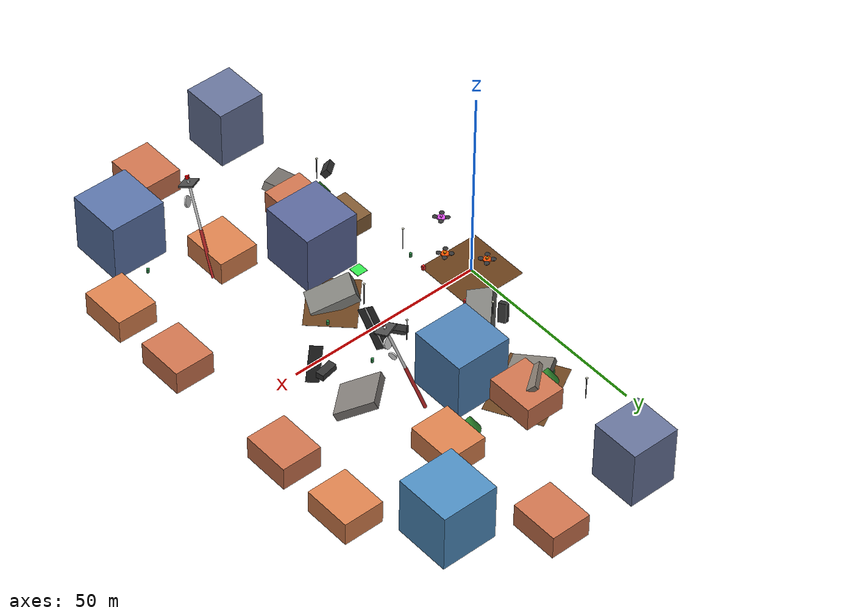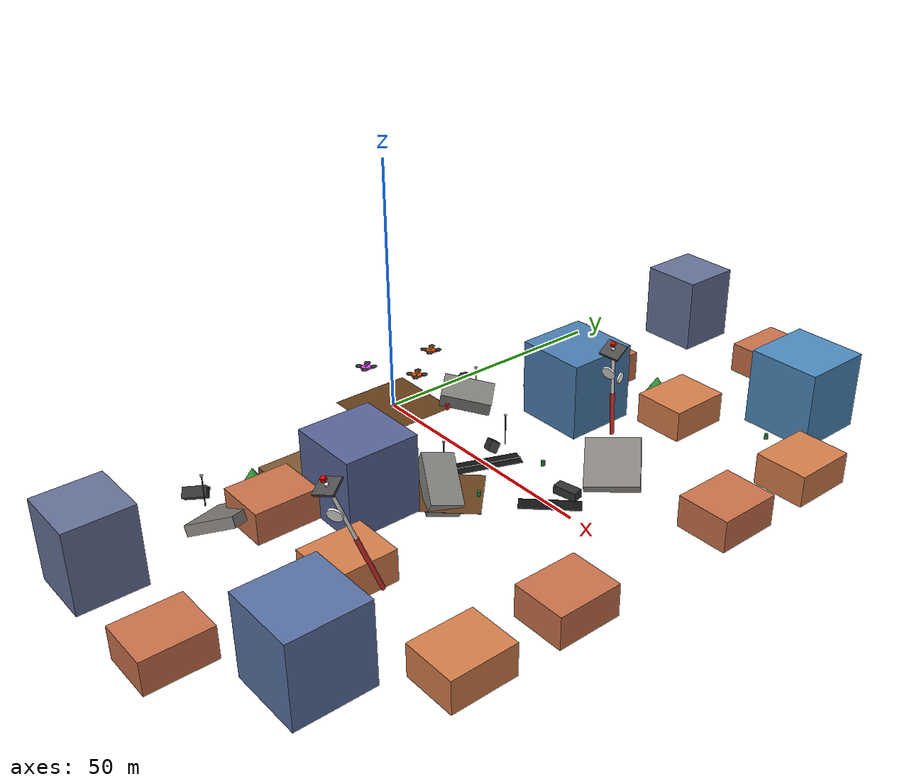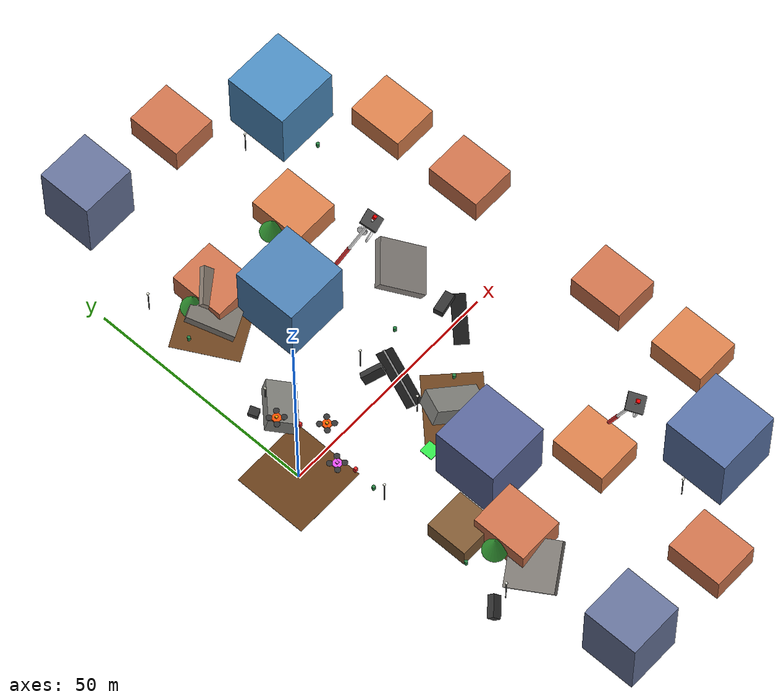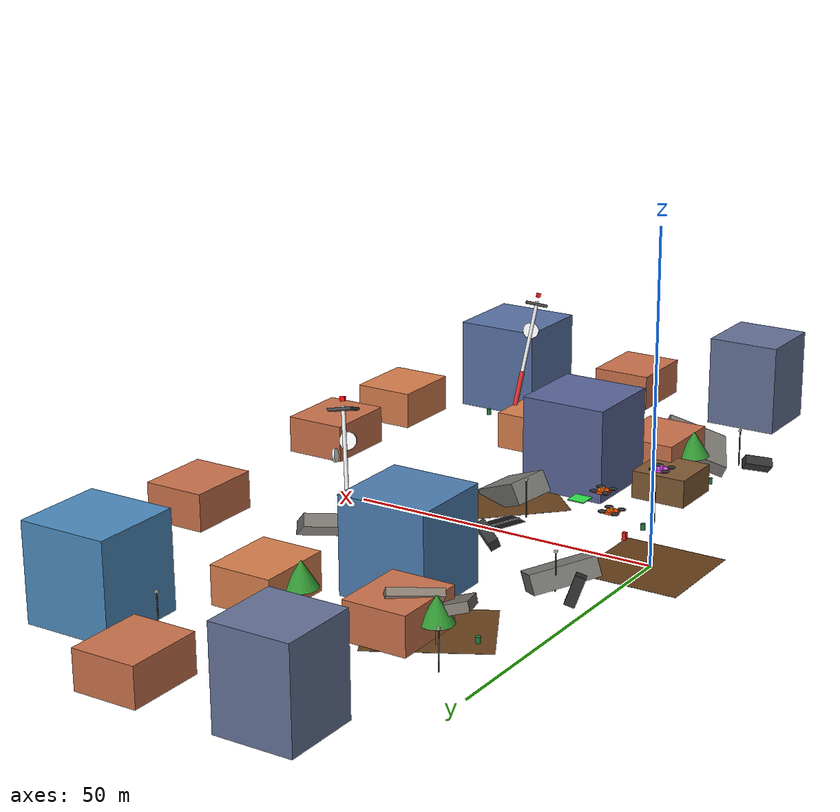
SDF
<sdf version="1.8">
 <world name="city_earthquake_fire_world">
  <model name="road_crack_east_1">
   <static>true</static>
   <pose>28 0 0.04 0 0 1.2</pose>
   <link name="link">
    <visual name="crack">
     <geometry><box><size>13 3.5 0.05</size></box></geometry>
     <material><ambient>0.05 0.05 0.05 1</ambient><diffuse>0.08 0.08 0.08 1</diffuse></material>
    </visual>
    <visual name="rubble_edge">
     <pose>0 0 0.04 0 0 0</pose>
     <geometry><box><size>13.2 0.4 0.08</size></box></geometry>
     <material><ambient>0.4 0.4 0.4 1</ambient><diffuse>0.5 0.5 0.5 1</diffuse></material>
    </visual>
   </link>
  </model>
  <model name="road_crack_east_2">
   <static>true</static>
   <pose>45 0 0.04 0 0 0.8</pose>
   <link name="link">
    <visual name="crack">
     <geometry><box><size>11 3.0 0.05</size></box></geometry>
     <material><ambient>0.05 0.05 0.05 1</ambient><diffuse>0.08 0.08 0.08 1</diffuse></material>
    </visual>
   </link>
  </model>
  <model name="mud_patch_1">
   <static>true</static>
   <pose>0 0 0.02 0 0 0</pose>
   <link name="link">
    <visual name="mud">
     <geometry><box><size>16 16 0.03</size></box></geometry>
     <material><ambient>0.3 0.18 0.08 1</ambient><diffuse>0.4 0.24 0.1 1</diffuse></material>
    </visual>
   </link>
  </model>
  <model name="mud_patch_2">
   <static>true</static>
   <pose>15 35 0.02 0 0 0.5</pose>
   <link name="link">
    <visual name="mud">
     <geometry><box><size>18 14 0.03</size></box></geometry>
     <material><ambient>0.32 0.2 0.09 1</ambient><diffuse>0.42 0.26 0.12 1</diffuse></material>
    </visual>
   </link>
  </model>
  <model name="mud_patch_4">
   <static>true</static>
   <pose>30 -12 0.02 0 0 0.8</pose>
   <link name="link">
    <visual name="mud">
     <geometry><box><size>15 12 0.03</size></box></geometry>
     <material><ambient>0.32 0.2 0.09 1</ambient><diffuse>0.42 0.26 0.12 1</diffuse></material>
    </visual>
   </link>
  </model>
  <model name="ugv_charging_pad_alpha">
   <static>true</static>
   <pose>20 -15 1.45 0 0 0</pose>
   <link name="link">
    <visual name="charging_pad">
     <geometry><box><size>2.8 2.8 0.15</size></box></geometry>
     <material>
      <ambient>0.1 0.8 0.2 1</ambient>
      <diffuse>0.2 0.9 0.3 1</diffuse>
      <emissive>0.1 0.9 0.2 1</emissive>
     </material>
    </visual>
   </link>
  </model>
  <model name="collapsed_building_1">
   <static>true</static>
   <pose>15 35 2 0.3 0.2 0.5</pose>
   <link name="link">
    <visual name="slab1">
     <pose>0 0 1 0 0 0</pose>
     <geometry><box><size>12 10 1.5</size></box></geometry>
     <material><ambient>0.4 0.38 0.35 1</ambient><diffuse>0.5 0.48 0.45 1</diffuse></material>
    </visual>
    <visual name="slab2">
     <pose>2 1 2.5 0.4 -0.2 0.3</pose>
     <geometry><box><size>8 8 1.2</size></box></geometry>
     <material><ambient>0.45 0.4 0.35 1</ambient><diffuse>0.55 0.5 0.45 1</diffuse></material>
    </visual>
   </link>
  </model>
  <model name="collapsed_building_3">
   <static>true</static>
   <pose>45 15 2 0.1 0.5 -0.8</pose>
   <link name="link">
    <visual name="slab">
     <geometry><box><size>10 10 2</size></box></geometry>
     <material><ambient>0.42 0.4 0.38 1</ambient><diffuse>0.52 0.5 0.48 1</diffuse></material>
    </visual>
   </link>
  </model>
  <model name="collapsed_building_5">
   <static>true</static>
   <pose>15 -45 2 0.4 -0.2 -1.1</pose>
   <link name="link">
    <visual name="slab">
     <geometry><box><size>10 10 2</size></box></geometry>
     <material><ambient>0.42 0.4 0.38 1</ambient><diffuse>0.52 0.5 0.48 1</diffuse></material>
    </visual>
   </link>
  </model>
  <model name="suv_wreck_1">
   <static>true</static>
   <pose>4 15 1.0 0.4 1.2 0.8</pose>
   <link name="link">
    <visual name="chassis">
     <geometry><box><size>4.5 2.0 1.6</size></box></geometry>
     <material><ambient>0.15 0.15 0.15 1</ambient><diffuse>0.2 0.2 0.2 1</diffuse></material>
    </visual>
   </link>
  </model>
  <model name="suv_wreck_3">
   <static>true</static>
   <pose>25 4 0.9 1.1 -0.4 -0.5</pose>
   <link name="link">
    <visual name="chassis">
     <geometry><box><size>4.5 2.0 1.6</size></box></geometry>
     <material><ambient>0.15 0.15 0.15 1</ambient><diffuse>0.2 0.2 0.2 1</diffuse></material>
    </visual>
   </link>
  </model>
  <model name="suv_wreck_5">
   <static>true</static>
   <pose>45 4 1.1 3.14 0 0.2</pose>
   <link name="link">
    <visual name="chassis">
     <geometry><box><size>4.5 2.0 1.6</size></box></geometry>
     <material><ambient>0.15 0.15 0.15 1</ambient><diffuse>0.2 0.2 0.2 1</diffuse></material>
    </visual>
   </link>
  </model>
  <model name="suv_wreck_7">
   <static>true</static>
   <pose>4 -45 1.0 0.8 -0.2 0.7</pose>
   <link name="link">
    <visual name="chassis">
     <geometry><box><size>4.5 2.0 1.6</size></box></geometry>
     <material><ambient>0.15 0.15 0.15 1</ambient><diffuse>0.2 0.2 0.2 1</diffuse></material>
    </visual>
   </link>
  </model>
  <model name="rubble_mound_1">
   <static>true</static>
   <pose>8 12 1.5 0.3 0.2 0.8</pose>
   <link name="link">
    <visual name="visual">
     <geometry><box><size>10 6 3</size></box></geometry>
     <material><ambient>0.4 0.4 0.38 1</ambient><diffuse>0.5 0.5 0.48 1</diffuse></material>
    </visual>
   </link>
  </model>
  <model name="rubble_mound_3">
   <static>true</static>
   <pose>30 -12 1.8 -0.2 0.4 -0.5</pose>
   <link name="link">
    <visual name="visual">
     <geometry><box><size>11 6 3.5</size></box></geometry>
     <material><ambient>0.4 0.4 0.38 1</ambient><diffuse>0.5 0.5 0.48 1</diffuse></material>
    </visual>
   </link>
  </model>
  <model name="dirt_mound_1">
   <static>true</static>
   <pose>12 -30 1.2 0 0 0</pose>
   <link name="link">
    <visual name="visual">
     <geometry><box><size>9 9 4.5</size></box></geometry>
     <material><ambient>0.4 0.28 0.15 1</ambient><diffuse>0.5 0.35 0.2 1</diffuse></material>
    </visual>
   </link>
  </model>
  <model name="broken_cell_tower_1">
   <static>true</static>
   <pose>35 25 0.0 0.35 0.15 0.3</pose>
   <link name="link">
    <visual name="mast_lower">
     <pose>0 0 6 0 0 0</pose>
     <geometry><cylinder><radius>0.4</radius><length>12</length></cylinder></geometry>
     <material><ambient>0.8 0.15 0.15 1</ambient><diffuse>0.9 0.2 0.2 1</diffuse></material>
    </visual>
    <visual name="mast_upper">
     <pose>0 0 18 0 0 0</pose>
     <geometry><cylinder><radius>0.3</radius><length>12</length></cylinder></geometry>
     <material><ambient>0.85 0.85 0.85 1</ambient><diffuse>0.95 0.95 0.95 1</diffuse></material>
    </visual>
    <visual name="antenna_boom">
     <pose>0 0 23.5 0 0 0</pose>
     <geometry><box><size>3.6 3.6 0.4</size></box></geometry>
     <material><ambient>0.2 0.2 0.2 1</ambient><diffuse>0.3 0.3 0.3 1</diffuse></material>
    </visual>
    <visual name="microwave_dish_1">
     <pose>0 -1.5 19 1.57 0 0</pose>
     <geometry><cylinder><radius>1.3</radius><length>0.35</length></cylinder></geometry>
     <material><ambient>0.9 0.9 0.9 1</ambient><diffuse>1.0 1.0 1.0 1</diffuse></material>
    </visual>
    <visual name="microwave_dish_2">
     <pose>1.5 0 17 0 1.57 0</pose>
     <geometry><cylinder><radius>1.0</radius><length>0.3</length></cylinder></geometry>
     <material><ambient>0.9 0.9 0.9 1</ambient><diffuse>1.0 1.0 1.0 1</diffuse></material>
    </visual>
    <visual name="hazard_beacon">
     <pose>0 0 25.0 0 0 0</pose>
     <geometry><box><size>0.7 0.7 0.7</size></box></geometry>
     <material>
      <ambient>1.0 0.0 0.0 1</ambient>
      <diffuse>1.0 0.0 0.0 1</diffuse>
      <emissive>1.0 0.0 0.0 1</emissive>
     </material>
    </visual>
   </link>
  </model>
  <model name="broken_cell_tower_3">
   <static>true</static>
   <pose>45 -35 0.0 0.3 -0.2 0.5</pose>
   <link name="link">
    <visual name="mast_lower">
     <pose>0 0 6 0 0 0</pose>
     <geometry><cylinder><radius>0.4</radius><length>12</length></cylinder></geometry>
     <material><ambient>0.8 0.15 0.15 1</ambient><diffuse>0.9 0.2 0.2 1</diffuse></material>
    </visual>
    <visual name="mast_upper">
     <pose>0 0 18 0 0 0</pose>
     <geometry><cylinder><radius>0.3</radius><length>12</length></cylinder></geometry>
     <material><ambient>0.85 0.85 0.85 1</ambient><diffuse>0.95 0.95 0.95 1</diffuse></material>
    </visual>
    <visual name="antenna_boom">
     <pose>0 0 23.5 0 0 0</pose>
     <geometry><box><size>3.6 3.6 0.4</size></box></geometry>
     <material><ambient>0.2 0.2 0.2 1</ambient><diffuse>0.3 0.3 0.3 1</diffuse></material>
    </visual>
    <visual name="microwave_dish_1">
     <pose>0 -1.5 19 1.57 0 0</pose>
     <geometry><cylinder><radius>1.3</radius><length>0.35</length></cylinder></geometry>
     <material><ambient>0.9 0.9 0.9 1</ambient><diffuse>1.0 1.0 1.0 1</diffuse></material>
    </visual>
    <visual name="hazard_beacon">
     <pose>0 0 25.0 0 0 0</pose>
     <geometry><box><size>0.7 0.7 0.7</size></box></geometry>
     <material>
      <ambient>1.0 0.0 0.0 1</ambient>
      <diffuse>1.0 0.0 0.0 1</diffuse>
      <emissive>1.0 0.0 0.0 1</emissive>
     </material>
    </visual>
   </link>
  </model>
  <model name="tree_1">
   <static>true</static>
   <pose>12 38 0 0 0 0</pose>
   <link name="link">
    <visual name="trunk">
     <pose>0 0 2 0 0 0</pose>
     <geometry><cylinder><radius>0.25</radius><length>4</length></cylinder></geometry>
     <material><ambient>0.4 0.25 0.1 1</ambient><diffuse>0.5 0.3 0.15 1</diffuse></material>
    </visual>
    <visual name="canopy">
     <pose>0 0 5 0 0 0</pose>
     <geometry><cone><radius>2.5</radius><length>4</length></cone></geometry>
     <material><ambient>0.15 0.5 0.15 1</ambient><diffuse>0.2 0.6 0.2 1</diffuse></material>
    </visual>
   </link>
  </model>
  <model name="tree_2">
   <static>true</static>
   <pose>34 38 0 0 0 0</pose>
   <link name="link">
    <visual name="trunk">
     <pose>0 0 2 0 0 0</pose>
     <geometry><cylinder><radius>0.25</radius><length>4</length></cylinder></geometry>
     <material><ambient>0.4 0.25 0.1 1</ambient><diffuse>0.5 0.3 0.15 1</diffuse></material>
    </visual>
    <visual name="canopy">
     <pose>0 0 5 0 0 0</pose>
     <geometry><cone><radius>2.5</radius><length>4</length></cone></geometry>
     <material><ambient>0.15 0.5 0.15 1</ambient><diffuse>0.2 0.6 0.2 1</diffuse></material>
    </visual>
   </link>
  </model>
  <model name="tree_5">
   <static>true</static>
   <pose>12 -38 0 0 0 0</pose>
   <link name="link">
    <visual name="trunk">
     <pose>0 0 2 0 0 0</pose>
     <geometry><cylinder><radius>0.25</radius><length>4</length></cylinder></geometry>
     <material><ambient>0.4 0.25 0.1 1</ambient><diffuse>0.5 0.3 0.15 1</diffuse></material>
    </visual>
    <visual name="canopy">
     <pose>0 0 5 0 0 0</pose>
     <geometry><cone><radius>2.5</radius><length>4</length></cone></geometry>
     <material><ambient>0.15 0.5 0.15 1</ambient><diffuse>0.2 0.6 0.2 1</diffuse></material>
    </visual>
   </link>
  </model>
  <model name="bench_1">
   <static>true</static>
   <pose>18 42 0.4 0 0 0</pose>
   <link name="link">
    <visual name="seat">
     <geometry><box><size>2.0 0.6 0.1</size></box></geometry>
     <material><ambient>0.5 0.25 0.1 1</ambient><diffuse>0.6 0.3 0.15 1</diffuse></material>
    </visual>
   </link>
  </model>
  <model name="hydrant_1">
   <static>true</static>
   <pose>7.8 15 0.4 0 0 0</pose>
   <link name="link">
    <visual name="body">
     <geometry><cylinder><radius>0.2</radius><length>0.8</length></cylinder></geometry>
     <material><ambient>0.9 0.1 0.1 1</ambient><diffuse>1.0 0.15 0.15 1</diffuse></material>
    </visual>
   </link>
  </model>
  <model name="post_box_1">
   <static>true</static>
   <pose>8 7 0.6 0 0 0</pose>
   <link name="link">
    <visual name="box">
     <geometry><box><size>0.6 0.6 1.2</size></box></geometry>
     <material><ambient>0.8 0.1 0.1 1</ambient><diffuse>0.9 0.15 0.15 1</diffuse></material>
    </visual>
   </link>
  </model>
  <model name="post_box_3">
   <static>true</static>
   <pose>8 -7 0.6 0 0 0</pose>
   <link name="link">
    <visual name="box">
     <geometry><box><size>0.6 0.6 1.2</size></box></geometry>
     <material><ambient>0.8 0.1 0.1 1</ambient><diffuse>0.9 0.15 0.15 1</diffuse></material>
    </visual>
   </link>
  </model>
  <model name="street_lamp_1">
   <static>true</static>
   <pose>7.2 15 3.0 0 0 0</pose>
   <link name="link">
    <visual name="pole">
     <geometry><cylinder><radius>0.1</radius><length>6.0</length></cylinder></geometry>
     <material><ambient>0.3 0.3 0.3 1</ambient><diffuse>0.4 0.4 0.4 1</diffuse></material>
    </visual>
    <visual name="lamp">
     <pose>0 0 3.1 0 0 0</pose>
     <geometry><box><size>0.4 0.4 0.3</size></box></geometry>
     <material>
      <ambient>1.0 1.0 0.8 1</ambient>
      <diffuse>1.0 1.0 0.9 1</diffuse>
      <emissive>1.0 1.0 0.8 1</emissive>
     </material>
    </visual>
   </link>
  </model>
  <model name="street_lamp_3">
   <static>true</static>
   <pose>7.2 -15 3.0 0 0 0</pose>
   <link name="link">
    <visual name="pole">
     <geometry><cylinder><radius>0.1</radius><length>6.0</length></cylinder></geometry>
     <material><ambient>0.3 0.3 0.3 1</ambient><diffuse>0.4 0.4 0.4 1</diffuse></material>
    </visual>
    <visual name="lamp">
     <pose>0 0 3.1 0 0 0</pose>
     <geometry><box><size>0.4 0.4 0.3</size></box></geometry>
     <material>
      <ambient>1.0 1.0 0.8 1</ambient>
      <diffuse>1.0 1.0 0.9 1</diffuse>
      <emissive>1.0 1.0 0.8 1</emissive>
     </material>
    </visual>
   </link>
  </model>
  <model name="street_lamp_5">
   <static>true</static>
   <pose>7.2 45 3.0 0 0 0</pose>
   <link name="link">
    <visual name="pole">
     <geometry><cylinder><radius>0.1</radius><length>6.0</length></cylinder></geometry>
     <material><ambient>0.3 0.3 0.3 1</ambient><diffuse>0.4 0.4 0.4 1</diffuse></material>
    </visual>
    <visual name="lamp">
     <pose>0 0 3.1 0 0 0</pose>
     <geometry><box><size>0.4 0.4 0.3</size></box></geometry>
     <material>
      <ambient>1.0 1.0 0.8 1</ambient>
      <diffuse>1.0 1.0 0.9 1</diffuse>
      <emissive>1.0 1.0 0.8 1</emissive>
     </material>
    </visual>
   </link>
  </model>
  <model name="street_lamp_7">
   <static>true</static>
   <pose>7.2 -45 3.0 0 0 0</pose>
   <link name="link">
    <visual name="pole">
     <geometry><cylinder><radius>0.1</radius><length>6.0</length></cylinder></geometry>
     <material><ambient>0.3 0.3 0.3 1</ambient><diffuse>0.4 0.4 0.4 1</diffuse></material>
    </visual>
    <visual name="lamp">
     <pose>0 0 3.1 0 0 0</pose>
     <geometry><box><size>0.4 0.4 0.3</size></box></geometry>
     <material>
      <ambient>1.0 1.0 0.8 1</ambient>
      <diffuse>1.0 1.0 0.9 1</diffuse>
      <emissive>1.0 1.0 0.8 1</emissive>
     </material>
    </visual>
   </link>
  </model>
  <model name="street_lamp_9">
   <static>true</static>
   <pose>25 7.2 3.0 0 0 0</pose>
   <link name="link">
    <visual name="pole">
     <geometry><cylinder><radius>0.1</radius><length>6.0</length></cylinder></geometry>
     <material><ambient>0.3 0.3 0.3 1</ambient><diffuse>0.4 0.4 0.4 1</diffuse></material>
    </visual>
    <visual name="lamp">
     <pose>0 0 3.1 0 0 0</pose>
     <geometry><box><size>0.4 0.4 0.3</size></box></geometry>
     <material>
      <ambient>1.0 1.0 0.8 1</ambient>
      <diffuse>1.0 1.0 0.9 1</diffuse>
      <emissive>1.0 1.0 0.8 1</emissive>
     </material>
    </visual>
   </link>
  </model>
  <model name="street_lamp_11">
   <static>true</static>
   <pose>25 -7.2 3.0 0 0 0</pose>
   <link name="link">
    <visual name="pole">
     <geometry><cylinder><radius>0.1</radius><length>6.0</length></cylinder></geometry>
     <material><ambient>0.3 0.3 0.3 1</ambient><diffuse>0.4 0.4 0.4 1</diffuse></material>
    </visual>
    <visual name="lamp">
     <pose>0 0 3.1 0 0 0</pose>
     <geometry><box><size>0.4 0.4 0.3</size></box></geometry>
     <material>
      <ambient>1.0 1.0 0.8 1</ambient>
      <diffuse>1.0 1.0 0.9 1</diffuse>
      <emissive>1.0 1.0 0.8 1</emissive>
     </material>
    </visual>
   </link>
  </model>
  <model name="street_lamp_13">
   <static>true</static>
   <pose>45 55.2 3.0 0 0 0</pose>
   <link name="link">
    <visual name="pole">
     <geometry><cylinder><radius>0.1</radius><length>6.0</length></cylinder></geometry>
     <material><ambient>0.3 0.3 0.3 1</ambient><diffuse>0.4 0.4 0.4 1</diffuse></material>
    </visual>
    <visual name="lamp">
     <pose>0 0 3.1 0 0 0</pose>
     <geometry><box><size>0.4 0.4 0.3</size></box></geometry>
     <material>
      <ambient>1.0 1.0 0.8 1</ambient>
      <diffuse>1.0 1.0 0.9 1</diffuse>
      <emissive>1.0 1.0 0.8 1</emissive>
     </material>
    </visual>
   </link>
  </model>
  <model name="street_lamp_15">
   <static>true</static>
   <pose>45 -55.2 3.0 0 0 0</pose>
   <link name="link">
    <visual name="pole">
     <geometry><cylinder><radius>0.1</radius><length>6.0</length></cylinder></geometry>
     <material><ambient>0.3 0.3 0.3 1</ambient><diffuse>0.4 0.4 0.4 1</diffuse></material>
    </visual>
    <visual name="lamp">
     <pose>0 0 3.1 0 0 0</pose>
     <geometry><box><size>0.4 0.4 0.3</size></box></geometry>
     <material>
      <ambient>1.0 1.0 0.8 1</ambient>
      <diffuse>1.0 1.0 0.9 1</diffuse>
      <emissive>1.0 1.0 0.8 1</emissive>
     </material>
    </visual>
   </link>
  </model>
  <model name="dustbin_1">
   <static>true</static>
   <pose>7.5 12 0.5 0 0 0</pose>
   <link name="link">
    <visual name="bin">
     <geometry><cylinder><radius>0.35</radius><length>1.0</length></cylinder></geometry>
     <material><ambient>0.1 0.4 0.2 1</ambient><diffuse>0.15 0.5 0.25 1</diffuse></material>
    </visual>
   </link>
  </model>
  <model name="dustbin_3">
   <static>true</static>
   <pose>7.5 -12 0.5 0 0 0</pose>
   <link name="link">
    <visual name="bin">
     <geometry><cylinder><radius>0.35</radius><length>1.0</length></cylinder></geometry>
     <material><ambient>0.1 0.4 0.2 1</ambient><diffuse>0.15 0.5 0.25 1</diffuse></material>
    </visual>
   </link>
  </model>
  <model name="dustbin_5">
   <static>true</static>
   <pose>7.5 35 0.5 0 0 0</pose>
   <link name="link">
    <visual name="bin">
     <geometry><cylinder><radius>0.35</radius><length>1.0</length></cylinder></geometry>
     <material><ambient>0.1 0.4 0.2 1</ambient><diffuse>0.15 0.5 0.25 1</diffuse></material>
    </visual>
   </link>
  </model>
  <model name="dustbin_7">
   <static>true</static>
   <pose>7.5 -35 0.5 0 0 0</pose>
   <link name="link">
    <visual name="bin">
     <geometry><cylinder><radius>0.35</radius><length>1.0</length></cylinder></geometry>
     <material><ambient>0.1 0.4 0.2 1</ambient><diffuse>0.15 0.5 0.25 1</diffuse></material>
    </visual>
   </link>
  </model>
  <model name="dustbin_9">
   <static>true</static>
   <pose>35 7.5 0.5 0 0 0</pose>
   <link name="link">
    <visual name="bin">
     <geometry><cylinder><radius>0.35</radius><length>1.0</length></cylinder></geometry>
     <material><ambient>0.1 0.4 0.2 1</ambient><diffuse>0.15 0.5 0.25 1</diffuse></material>
    </visual>
   </link>
  </model>
  <model name="dustbin_11">
   <static>true</static>
   <pose>35 -7.5 0.5 0 0 0</pose>
   <link name="link">
    <visual name="bin">
     <geometry><cylinder><radius>0.35</radius><length>1.0</length></cylinder></geometry>
     <material><ambient>0.1 0.4 0.2 1</ambient><diffuse>0.15 0.5 0.25 1</diffuse></material>
    </visual>
   </link>
  </model>
  <model name="dustbin_13">
   <static>true</static>
   <pose>55 45.5 0.5 0 0 0</pose>
   <link name="link">
    <visual name="bin">
     <geometry><cylinder><radius>0.35</radius><length>1.0</length></cylinder></geometry>
     <material><ambient>0.1 0.4 0.2 1</ambient><diffuse>0.15 0.5 0.25 1</diffuse></material>
    </visual>
   </link>
  </model>
  <model name="dustbin_15">
   <static>true</static>
   <pose>55 -45.5 0.5 0 0 0</pose>
   <link name="link">
    <visual name="bin">
     <geometry><cylinder><radius>0.35</radius><length>1.0</length></cylinder></geometry>
     <material><ambient>0.1 0.4 0.2 1</ambient><diffuse>0.15 0.5 0.25 1</diffuse></material>
    </visual>
   </link>
  </model>
  <model name="office_1">
   <static>true</static>
   <pose>25 25 7.5 0 0 0</pose>
   <link name="link">
    <visual name="facade">
     <geometry><box><size>14 14 15</size></box></geometry>
     <material><ambient>0.2 0.35 0.5 1</ambient><diffuse>0.3 0.5 0.7 1</diffuse></material>
    </visual>
   </link>
  </model>
  <model name="office_3">
   <static>true</static>
   <pose>25 -25 7.5 0 0 0</pose>
   <link name="link">
    <visual name="facade">
     <geometry><box><size>14 14 15</size></box></geometry>
     <material><ambient>0.25 0.3 0.45 1</ambient><diffuse>0.35 0.4 0.6 1</diffuse></material>
    </visual>
   </link>
  </model>
  <model name="office_5">
   <static>true</static>
   <pose>55 55 7.5 0 0 0</pose>
   <link name="link">
    <visual name="facade">
     <geometry><box><size>14 14 15</size></box></geometry>
     <material><ambient>0.2 0.4 0.55 1</ambient><diffuse>0.3 0.55 0.75 1</diffuse></material>
    </visual>
   </link>
  </model>
  <model name="office_7">
   <static>true</static>
   <pose>55 -55 7.5 0 0 0</pose>
   <link name="link">
    <visual name="facade">
     <geometry><box><size>14 14 15</size></box></geometry>
     <material><ambient>0.25 0.35 0.5 1</ambient><diffuse>0.35 0.45 0.65 1</diffuse></material>
    </visual>
   </link>
  </model>
  <model name="office_9">
   <static>true</static>
   <pose>15 68 7.5 0 0 0</pose>
   <link name="link">
    <visual name="facade">
     <geometry><box><size>12 12 15</size></box></geometry>
     <material><ambient>0.3 0.35 0.45 1</ambient><diffuse>0.4 0.45 0.6 1</diffuse></material>
    </visual>
   </link>
  </model>
  <model name="office_11">
   <static>true</static>
   <pose>15 -68 7.5 0 0 0</pose>
   <link name="link">
    <visual name="facade">
     <geometry><box><size>12 12 15</size></box></geometry>
     <material><ambient>0.3 0.35 0.45 1</ambient><diffuse>0.4 0.45 0.6 1</diffuse></material>
    </visual>
   </link>
  </model>
  <model name="house_1">
   <static>true</static>
   <pose>18 38 3 0 0 0</pose>
   <link name="link">
    <visual name="walls">
     <geometry><box><size>10 12 6</size></box></geometry>
     <material><ambient>0.7 0.35 0.25 1</ambient><diffuse>0.8 0.45 0.3 1</diffuse></material>
    </visual>
   </link>
  </model>
  <model name="house_2">
   <static>true</static>
   <pose>40 38 3 0 0 0</pose>
   <link name="link">
    <visual name="walls">
     <geometry><box><size>10 12 6</size></box></geometry>
     <material><ambient>0.75 0.4 0.25 1</ambient><diffuse>0.85 0.5 0.3 1</diffuse></material>
    </visual>
   </link>
  </model>
  <model name="house_5">
   <static>true</static>
   <pose>18 -38 3 0 0 0</pose>
   <link name="link">
    <visual name="walls">
     <geometry><box><size>10 12 6</size></box></geometry>
     <material><ambient>0.7 0.35 0.25 1</ambient><diffuse>0.8 0.45 0.3 1</diffuse></material>
    </visual>
   </link>
  </model>
  <model name="house_6">
   <static>true</static>
   <pose>40 -38 3 0 0 0</pose>
   <link name="link">
    <visual name="walls">
     <geometry><box><size>10 12 6</size></box></geometry>
     <material><ambient>0.75 0.4 0.25 1</ambient><diffuse>0.85 0.5 0.3 1</diffuse></material>
    </visual>
   </link>
  </model>
  <model name="house_7">
   <static>true</static>
   <pose>68 18 3 0 0 0</pose>
   <link name="link">
    <visual name="walls">
     <geometry><box><size>10 12 6</size></box></geometry>
     <material><ambient>0.7 0.35 0.25 1</ambient><diffuse>0.8 0.45 0.3 1</diffuse></material>
    </visual>
   </link>
  </model>
  <model name="house_8">
   <static>true</static>
   <pose>68 38 3 0 0 0</pose>
   <link name="link">
    <visual name="walls">
     <geometry><box><size>10 12 6</size></box></geometry>
     <material><ambient>0.75 0.4 0.25 1</ambient><diffuse>0.85 0.5 0.3 1</diffuse></material>
    </visual>
   </link>
  </model>
  <model name="house_11">
   <static>true</static>
   <pose>68 -18 3 0 0 0</pose>
   <link name="link">
    <visual name="walls">
     <geometry><box><size>10 12 6</size></box></geometry>
     <material><ambient>0.7 0.35 0.25 1</ambient><diffuse>0.8 0.45 0.3 1</diffuse></material>
    </visual>
   </link>
  </model>
  <model name="house_12">
   <static>true</static>
   <pose>68 -38 3 0 0 0</pose>
   <link name="link">
    <visual name="walls">
     <geometry><box><size>10 12 6</size></box></geometry>
     <material><ambient>0.75 0.4 0.25 1</ambient><diffuse>0.85 0.5 0.3 1</diffuse></material>
    </visual>
   </link>
  </model>
  <model name="house_15">
   <static>true</static>
   <pose>38 68 3 0 0 0</pose>
   <link name="link">
    <visual name="walls">
     <geometry><box><size>10 12 6</size></box></geometry>
     <material><ambient>0.7 0.35 0.25 1</ambient><diffuse>0.8 0.45 0.3 1</diffuse></material>
    </visual>
   </link>
  </model>
  <model name="house_17">
   <static>true</static>
   <pose>38 -68 3 0 0 0</pose>
   <link name="link">
    <visual name="walls">
     <geometry><box><size>10 12 6</size></box></geometry>
     <material><ambient>0.7 0.35 0.25 1</ambient><diffuse>0.8 0.45 0.3 1</diffuse></material>
    </visual>
   </link>
  </model>
  <model name="UAV_1">
   <static>true</static>
   <pose>8.0 0.0 10.0 0 0 0</pose>
   <link name="link">
    <visual name="chassis">
     <geometry><box><size>1.8 1.8 0.4</size></box></geometry>
     <material>
      <ambient>1.0 0.2 0.0 1</ambient>
      <diffuse>1.0 0.3 0.0 1</diffuse>
      <emissive>1.0 0.2 0.0 1</emissive>
     </material>
    </visual>
    <visual name="rotor1">
     <pose>1.0 1.0 0.2 0 0 0</pose>
     <geometry><cylinder><radius>0.6</radius><length>0.1</length></cylinder></geometry>
     <material><ambient>0.1 0.1 0.1 1</ambient><diffuse>0.2 0.2 0.2 1</diffuse></material>
    </visual>
    <visual name="rotor2">
     <pose>-1.0 1.0 0.2 0 0 0</pose>
     <geometry><cylinder><radius>0.6</radius><length>0.1</length></cylinder></geometry>
     <material><ambient>0.1 0.1 0.1 1</ambient><diffuse>0.2 0.2 0.2 1</diffuse></material>
    </visual>
    <visual name="rotor3">
     <pose>1.0 -1.0 0.2 0 0 0</pose>
     <geometry><cylinder><radius>0.6</radius><length>0.1</length></cylinder></geometry>
     <material><ambient>0.1 0.1 0.1 1</ambient><diffuse>0.2 0.2 0.2 1</diffuse></material>
    </visual>
    <visual name="rotor4">
     <pose>-1.0 -1.0 0.2 0 0 0</pose>
     <geometry><cylinder><radius>0.6</radius><length>0.1</length></cylinder></geometry>
     <material><ambient>0.1 0.1 0.1 1</ambient><diffuse>0.2 0.2 0.2 1</diffuse></material>
    </visual>
    <visual name="beacon">
     <pose>0 0 0.3 0 0 0</pose>
     <geometry><box><size>0.5 0.5 0.5</size></box></geometry>
     <material>
      <ambient>1.0 0.5 0.0 1</ambient>
      <diffuse>1.0 0.6 0.0 1</diffuse>
      <emissive>1.0 0.8 0.0 1</emissive>
     </material>
    </visual>
   </link>
  </model>
  <model name="UAV_2">
   <static>true</static>
   <pose>2.5 7.6 10.5 0 0 0</pose>
   <link name="link">
    <visual name="chassis">
     <geometry><box><size>1.8 1.8 0.4</size></box></geometry>
     <material>
      <ambient>1.0 0.2 0.0 1</ambient>
      <diffuse>1.0 0.3 0.0 1</diffuse>
      <emissive>1.0 0.2 0.0 1</emissive>
     </material>
    </visual>
    <visual name="rotor1">
     <pose>1.0 1.0 0.2 0 0 0</pose>
     <geometry><cylinder><radius>0.6</radius><length>0.1</length></cylinder></geometry>
     <material><ambient>0.1 0.1 0.1 1</ambient><diffuse>0.2 0.2 0.2 1</diffuse></material>
    </visual>
    <visual name="rotor2">
     <pose>-1.0 1.0 0.2 0 0 0</pose>
     <geometry><cylinder><radius>0.6</radius><length>0.1</length></cylinder></geometry>
     <material><ambient>0.1 0.1 0.1 1</ambient><diffuse>0.2 0.2 0.2 1</diffuse></material>
    </visual>
    <visual name="rotor3">
     <pose>1.0 -1.0 0.2 0 0 0</pose>
     <geometry><cylinder><radius>0.6</radius><length>0.1</length></cylinder></geometry>
     <material><ambient>0.1 0.1 0.1 1</ambient><diffuse>0.2 0.2 0.2 1</diffuse></material>
    </visual>
    <visual name="rotor4">
     <pose>-1.0 -1.0 0.2 0 0 0</pose>
     <geometry><cylinder><radius>0.6</radius><length>0.1</length></cylinder></geometry>
     <material><ambient>0.1 0.1 0.1 1</ambient><diffuse>0.2 0.2 0.2 1</diffuse></material>
    </visual>
    <visual name="beacon">
     <pose>0 0 0.3 0 0 0</pose>
     <geometry><box><size>0.5 0.5 0.5</size></box></geometry>
     <material>
      <ambient>1.0 0.5 0.0 1</ambient>
      <diffuse>1.0 0.6 0.0 1</diffuse>
      <emissive>1.0 0.8 0.0 1</emissive>
     </material>
    </visual>
   </link>
  </model>
  <model name="UAV_5">
   <static>true</static>
   <pose>2.5 -7.6 12.0 0 0 0</pose>
   <link name="link">
    <visual name="chassis">
     <geometry><box><size>1.8 1.8 0.4</size></box></geometry>
     <material>
      <ambient>0.8 0.2 1.0 1</ambient>
      <diffuse>0.9 0.3 1.0 1</diffuse>
      <emissive>0.8 0.2 1.0 1</emissive>
     </material>
    </visual>
    <visual name="rotor1">
     <pose>1.0 1.0 0.2 0 0 0</pose>
     <geometry><cylinder><radius>0.6</radius><length>0.1</length></cylinder></geometry>
     <material><ambient>0.1 0.1 0.1 1</ambient><diffuse>0.2 0.2 0.2 1</diffuse></material>
    </visual>
    <visual name="rotor2">
     <pose>-1.0 1.0 0.2 0 0 0</pose>
     <geometry><cylinder><radius>0.6</radius><length>0.1</length></cylinder></geometry>
     <material><ambient>0.1 0.1 0.1 1</ambient><diffuse>0.2 0.2 0.2 1</diffuse></material>
    </visual>
    <visual name="rotor3">
     <pose>1.0 -1.0 0.2 0 0 0</pose>
     <geometry><cylinder><radius>0.6</radius><length>0.1</length></cylinder></geometry>
     <material><ambient>0.1 0.1 0.1 1</ambient><diffuse>0.2 0.2 0.2 1</diffuse></material>
    </visual>
    <visual name="rotor4">
     <pose>-1.0 -1.0 0.2 0 0 0</pose>
     <geometry><cylinder><radius>0.6</radius><length>0.1</length></cylinder></geometry>
     <material><ambient>0.1 0.1 0.1 1</ambient><diffuse>0.2 0.2 0.2 1</diffuse></material>
    </visual>
    <visual name="beacon">
     <pose>0 0 0.3 0 0 0</pose>
     <geometry><box><size>0.5 0.5 0.5</size></box></geometry>
     <material>
      <ambient>0.9 0.3 1.0 1</ambient>
      <diffuse>1.0 0.4 1.0 1</diffuse>
      <emissive>1.0 0.4 1.0 1</emissive>
     </material>
    </visual>
   </link>
  </model>
 </world>
</sdf>
